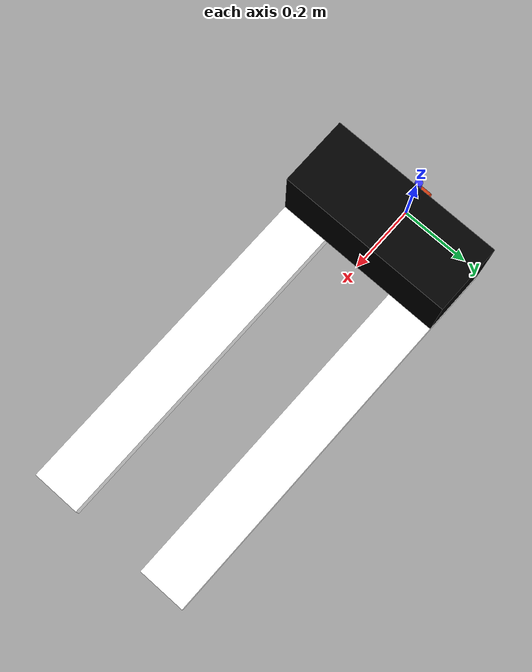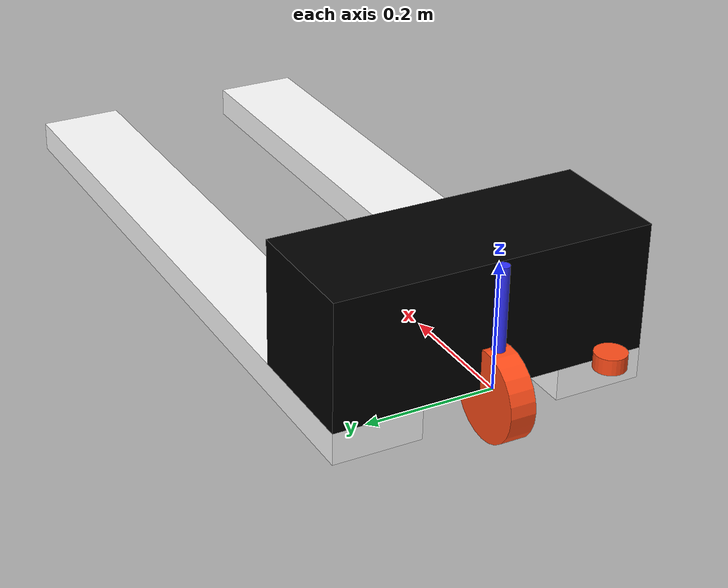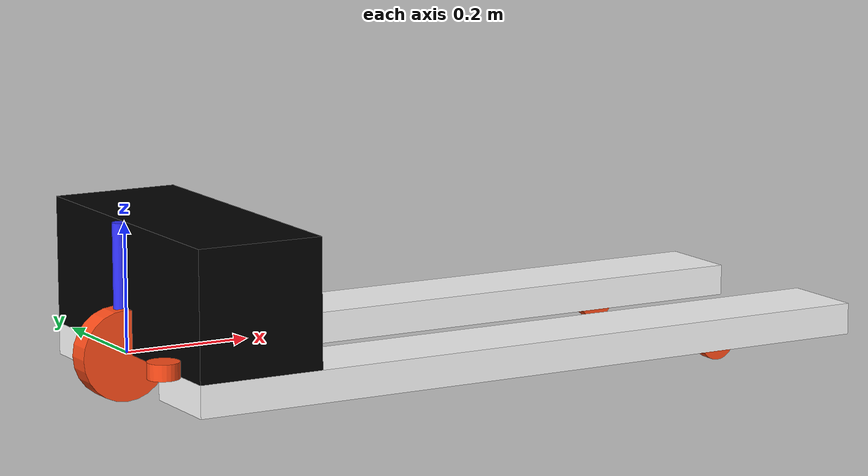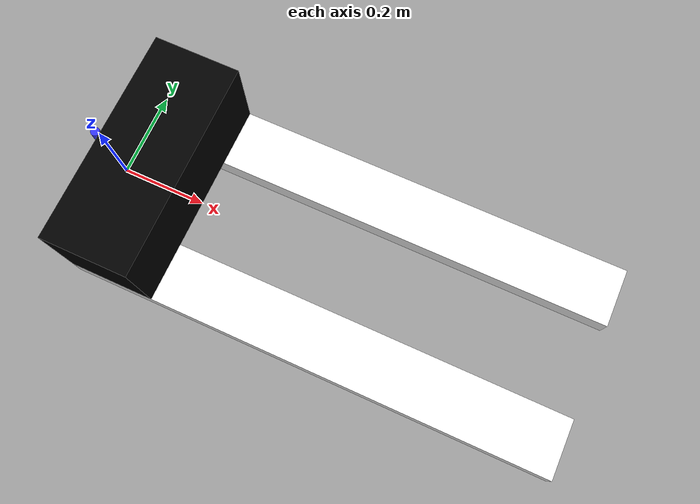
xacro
<?xml version="1.0"?>
<robot xmlns:xacro="http://www.ros.org/wiki/xacro"  name="robot">

    <xacro:arg name="use_ros2_control" default="true"/>

    <xacro:include filename="agv_model.xacro" />
    <xacro:if value="$(arg use_ros2_control)">
        <xacro:include filename="agv_control_bot.xacro" />
    </xacro:if>
    <xacro:unless value="$(arg use_ros2_control)">
        <xacro:include filename="agv_gazebo_control.xacro" />
    </xacro:unless>
    <xacro:include filename="laser.xacro" />

</robot>

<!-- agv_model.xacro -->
<robot xmlns:xacro="http://www.ros.org/wiki/xacro" >

    <xacro:include filename="inertia.xacro"/>

    <material name="white">
        <color rgba="1 1 1 1" />
    </material>

    <material name="orange">
        <color rgba="1 0.3 0.1 1"/>
    </material>

    <material name="blue">
        <color rgba="0.2 0.2 1 1"/>
    </material>

    <material name="black">
        <color rgba="0 0 0 1"/>
    </material>

    <!-- BASE_FOOTPRINT LINK-->
    <joint name="base_footprint_joint" type="fixed">
        <parent link="base_link"/>
        <child link="base_footprint"/>
        <origin xyz="0 0 0" rpy="0  0 0"/>
    </joint>

    <link name="base_footprint"/>

    <!-- Ana Gövde -->
    <link name="base_link">
        <visual>
            <origin xyz="0.1 0 0.1"/>
            <geometry>
                <box size="0.2 0.50 0.2"/>
            </geometry>
            <material name="black"/>
        </visual>
        <collision>
            <origin xyz="0.1 0 0.1"/>
            <geometry>
                <box size="0.2 0.50 0.2"/>
            </geometry>
            <material name="black"/>
        </collision>
        <xacro:inertial_box mass="2.0" x="0.2" y="0.50" z="0.2">
            <origin xyz="0.1 0 0.1" rpy="0 0 0"/>
        </xacro:inertial_box>
    </link>

    <!-- Tekerlekler -->
    <link name="fork_left_wheel">
        <visual>
            <geometry>
                <cylinder radius="0.03" length="0.02"/>
            </geometry>
            <material name="orange"/>
        </visual>
        <collision>
            <geometry>
                <cylinder radius="0.03" length="0.02"/>
            </geometry>
            <material name="orange"/>
        </collision>
        <xacro:inertial_cylinder mass="0.1" length="0.02" radius="0.03">
            <origin xyz="0 0 0" rpy="0 0 0"/>
        </xacro:inertial_cylinder>
    </link>

    <link name="fork_right_wheel">
        <visual>
            <geometry>
                <cylinder radius="0.03" length="0.02"/>
            </geometry>
            <material name="orange"/>
        </visual>
        <collision>
            <geometry>
                <cylinder radius="0.03" length="0.02"/>
            </geometry>
            <material name="orange"/>
        </collision>
        <xacro:inertial_cylinder mass="0.1" length="0.02" radius="0.03">
            <origin xyz="0 0 0" rpy="0 0 0"/>
        </xacro:inertial_cylinder>
    </link>

    <link name="front_wheel">
        <visual>
            <geometry>
                <cylinder radius="0.07" length="0.04"/>
            </geometry>
            <material name="orange"/>
        </visual>
        <collision>
            <geometry>
                <cylinder radius="0.07" length="0.04"/>
            </geometry>
            <material name="orange"/>
        </collision>
        <xacro:inertial_cylinder mass="0.1" length="0.04" radius="0.07">
            <origin xyz="0 0 0" rpy="0 0 0"/>
        </xacro:inertial_cylinder>
    </link>

    <!-- Direksyon Mekanizması -->

    <link name="steering_cylinder">
        <visual>
            <geometry>
                <cylinder radius="0.01" length="0.2"/>
            </geometry>
            <material name="blue"/>
        </visual>
        <collision>
            <geometry>
                <cylinder radius="0.01" length="0.2"/>
            </geometry>
            <material name="blue"/>
        </collision>
        <xacro:inertial_cylinder mass="0.1" length="0.2" radius="0.01">
            <origin xyz="0 0 0" rpy="0 0 0"/>
        </xacro:inertial_cylinder>
    </link>

    <!-- Çatal Mekanizması -->
    <link name="left_fork">
        <visual>
            <origin xyz="0.575 0 0.025"/>
            <geometry>
                <box size="1.15 0.14 0.05"/>
            </geometry>
            <material name="white"/>
        </visual>
        <collision>
            <origin xyz="0.575 0 0.025"/>
            <geometry>
                <box size="1.15 0.14 0.05"/>
            </geometry>
            <material name="white"/>
        </collision>
        <xacro:inertial_box mass="5.0" x="1.14" y="0.14" z="0.05">
            <origin xyz="0.575 0 0.025" rpy="0 0 0"/>
        </xacro:inertial_box>
    </link>

    <link name="right_fork">
        <visual>
            <origin xyz="0.575 0 0.025"/>
            <geometry>
                <box size="1.15 0.14 0.05"/>
            </geometry>
            <material name="white"/>
        </visual>
        <collision>
            <origin xyz="0.575 0 0.025"/>
            <geometry>
                <box size="1.15 0.14 0.05"/>
            </geometry>
            <material name="white"/>
        </collision>
        <xacro:inertial_box mass="5.0" x="1.14" y="0.14" z="0.05">
            <origin xyz="0.575 0 0.025" rpy="0 0 0"/>
        </xacro:inertial_box>
    </link>

    <!-- Bağlantılar -->
    <joint name="fork_left_wheel_joint" type="continuous">
        <parent link="base_link"/>
        <child link="fork_left_wheel"/>
        <origin xyz="0.94 0.18 -0.05" rpy="-${pi/2} 0 0" />
        <axis xyz="0 0 1"/>
    </joint>

    <joint name="fork_right_wheel_joint" type="continuous">
        <parent link="base_link"/>
        <child link="fork_right_wheel"/>
        <origin xyz="0.94 -0.18 -0.05" rpy="-${pi/2} 0 0" />
        <axis xyz="0 0 -1"/>
    </joint>

    <joint name="front_wheel_joint" type="continuous">
        <parent link="steering_cylinder"/>
        <child link="front_wheel"/>
        <origin xyz="0.0 0.0 -0.1" rpy="0 -${3*pi/2} 0" />
        <axis xyz="0 0 1"/>
    </joint>

    <joint name="steering_cylinder_joint" type="revolute">
        <parent link="base_link"/>
        <child link="steering_cylinder"/>
        <origin xyz="-0.01 0.0 0.1" rpy="0 0 ${pi/2}" />
        <axis xyz="0 0 -1"/>
        <limit effort="10.0" velocity="1.0" lower="-1.5" upper="1.5"/>
    </joint>

    <joint name="left_fork_joint" type="fixed">
        <parent link="base_link"/>
        <child link="left_fork"/>
        <origin xyz="0 0.18 -0.05"/>
    </joint>

    <joint name="right_fork_joint" type="fixed">
        <parent link="base_link"/>
        <child link="right_fork"/>
        <origin xyz="0 -0.18 -0.05"/>
    </joint>

</robot>

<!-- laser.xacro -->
<robot xmlns:xacro="http://ros.org/wiki/xacro">

    <joint name="laser_joint" type="fixed">
      <origin xyz="-0.025 -0.18 0.0125" rpy="${pi} 0 -${pi}"/>
      <parent link="base_link"/>
      <child link="laser"/>
    </joint>

    <link name="laser">
        <visual>
            <origin xyz="0 0 0"/>
            <geometry>
                <cylinder radius="0.025" length="0.025"/>
            </geometry>
            <material name="orange"/>
        </visual>
        <collision>
            <geometry>
                <cylinder radius="0.025" length="0.025"/>
            </geometry>
            <material name="orange"/>
        </collision>
        <xacro:inertial_cylinder mass="0.1" length="0.025" radius="0.025">
            <origin xyz="-0.025 -0.18 0.0125" rpy="0 0 0"/>
        </xacro:inertial_cylinder>
    </link>

    <gazebo reference="laser">
      <material value="Gazebo/Orange"/>
      <sensor type="gpu_lidar" name="head_hokuyo_sensor">
        <pose>0.075 0.0 0.0125 0 0 0</pose>
        <visualize>false</visualize>
        <update_rate>10</update_rate>
        <lidar>
          <scan>
            <horizontal>
              <samples>270</samples>
              <min_angle>-2.0943</min_angle>
              <max_angle>2.0943</max_angle>
            </horizontal>
          </scan>
          <range>
            <min>0.10</min>
            <max>20.0</max>
          </range>
        </lidar>
      <topic>scan</topic>
      <gz_frame_id>laser</gz_frame_id>
      </sensor>
    </gazebo>
</robot>
